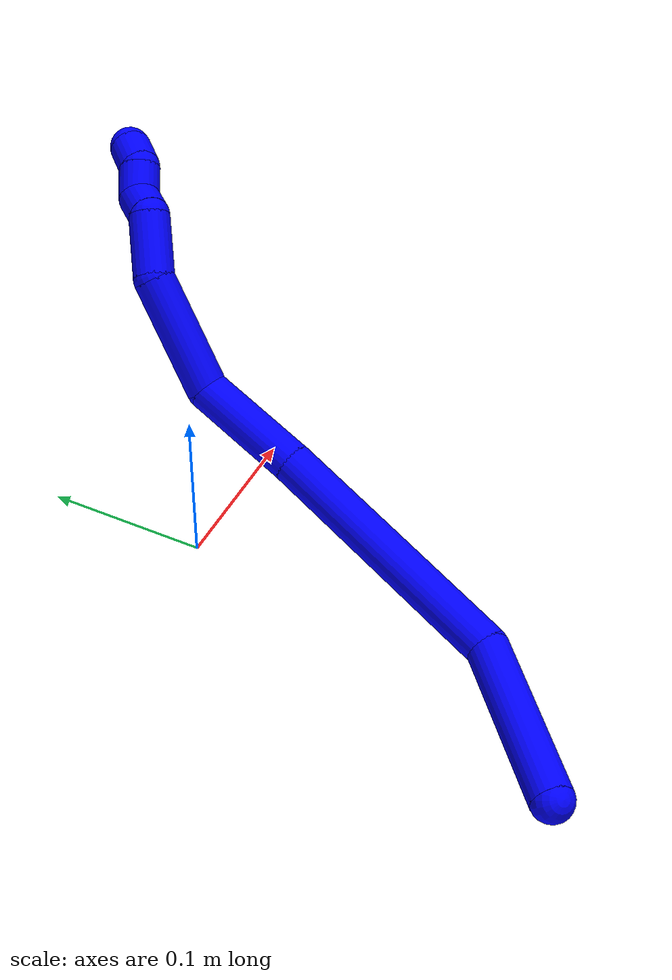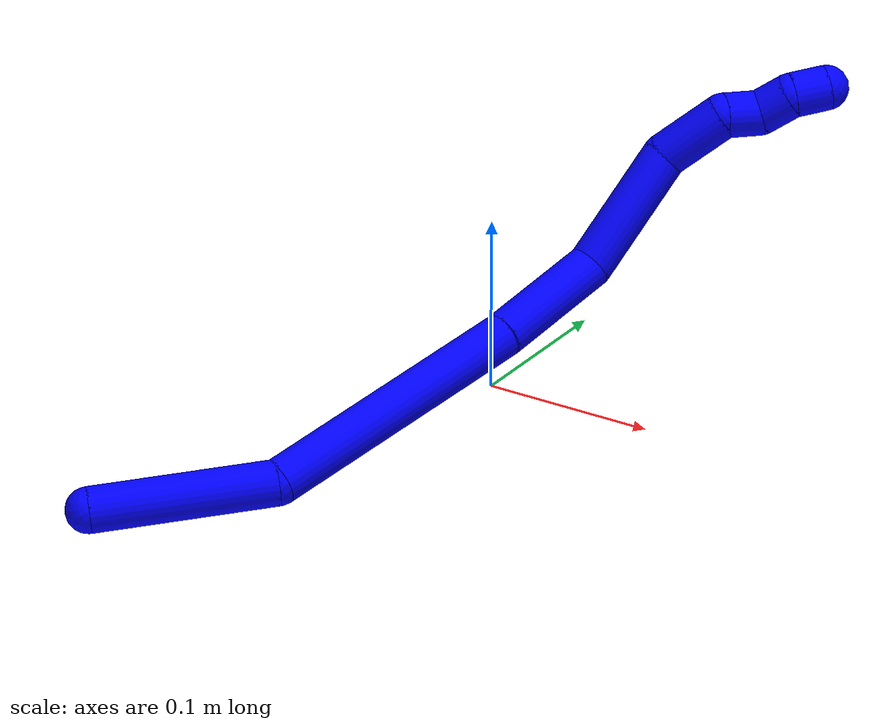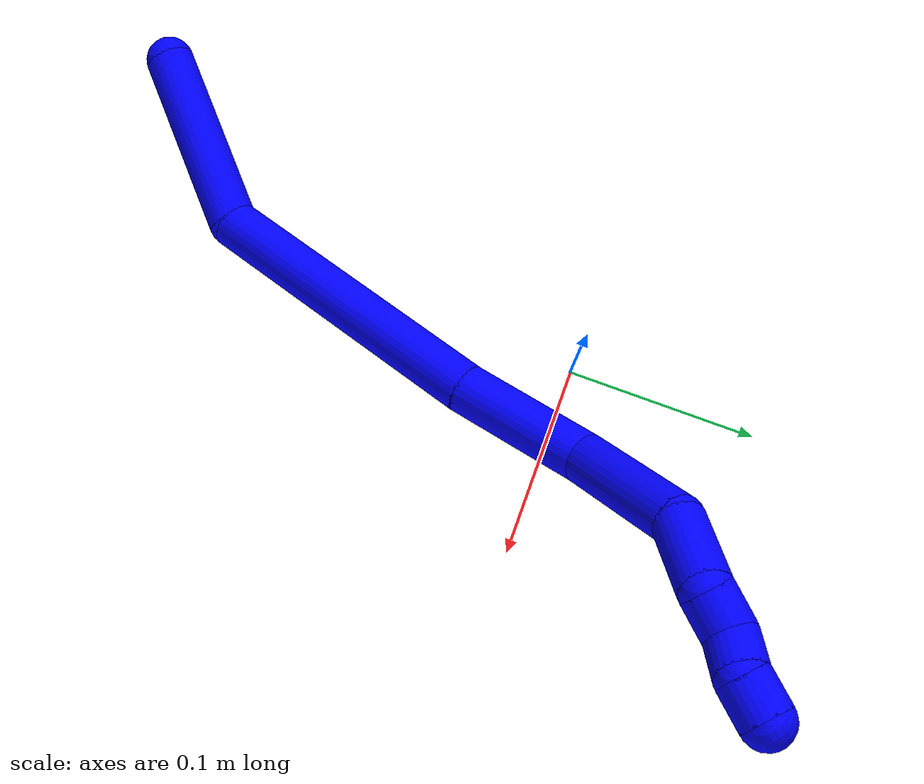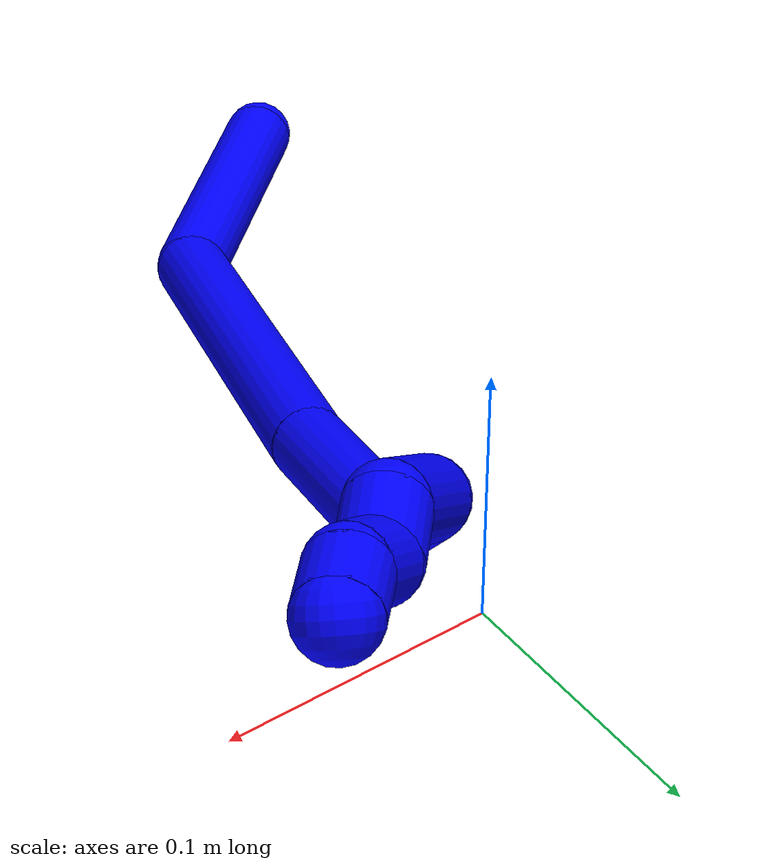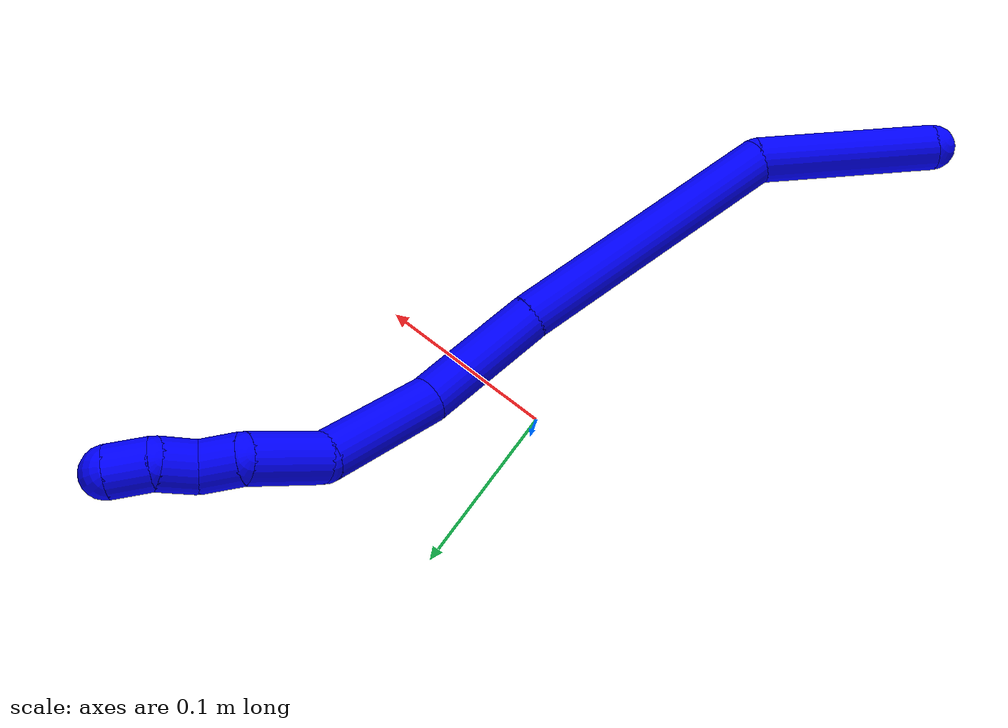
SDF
<sdf version="1.7">
 <world name="default">
  <plugin name="TubeGeneratorPlugin" filename="libtube_generator_plugin.so"/>
  <model name="photoneo_s_sensor">
   <static>1</static>
   <pose>0 0 2 1.57079 1.57079 3.14159</pose>
   <link name="link">
    <inertial><mass>0.1</mass></inertial>
    <sensor name="sensor" type="depth">
     <update_rate>30</update_rate>
     <camera>
      <horizontal_fov>1.22</horizontal_fov>
      <image><width>1920</width><height>1200</height><format>B8G8R8</format></image>
      <clip><near>0.1</near><far>4</far></clip>
      <depth_camera><output>points</output></depth_camera>
     </camera>
     <plugin name="camera_plugin" filename="libgazebo_ros_depth_camera.so">
      <baseline>0.2</baseline>
      <alwaysOn>1</alwaysOn>
      <updateRate>0.0</updateRate>
      <cameraName>camera_ir</cameraName>
      <imageTopicName>/camera/color/image_raw</imageTopicName>
      <cameraInfoTopicName>/camera/color/camera_info</cameraInfoTopicName>
      <depthImageTopicName>/camera/depth/image_raw</depthImageTopicName>
      <depthImageCameraInfoTopicName>/camera/depth/camera_info</depthImageCameraInfoTopicName>
      <pointCloudTopicName>/camera/depth/points</pointCloudTopicName>
      <frameName>fr_optical</frameName>
      <pointCloudCutoff>0.1</pointCloudCutoff>
      <pointCloudCutoffMax>2.0</pointCloudCutoffMax>
      <distortionK1>0</distortionK1>
      <distortionK2>0</distortionK2>
      <distortionK3>0</distortionK3>
      <distortionT1>0</distortionT1>
      <distortionT2>0</distortionT2>
      <CxPrime>0</CxPrime>
      <Cx>0</Cx>
      <Cy>0</Cy>
      <focalLength>0</focalLength>
      <hackBaseline>0</hackBaseline>
     </plugin>
    </sensor>
   </link>
  </model>
  <gravity>0 0 -9.8</gravity>
  <magnetic_field>6e-06 2.3e-05 -4.2e-05</magnetic_field>
  <atmosphere type="adiabatic"/>
  <physics name="default_physics" default="0" type="ode">
   <max_step_size>0.003</max_step_size>
   <real_time_factor>1</real_time_factor>
   <real_time_update_rate>1000</real_time_update_rate>
   <max_contacts>10000</max_contacts>
   <ode>
    <solver>
     <type>quick</type>
     <iters>100</iters>
     <sor>1.3</sor>
     <use_dynamic_moi_rescaling>0</use_dynamic_moi_rescaling>
    </solver>
    <constraints>
     <contact_max_correcting_vel>0</contact_max_correcting_vel>
     <contact_surface_layer>0.001</contact_surface_layer>
     <cfm>0</cfm>
     <erp>0.2</erp>
    </constraints>
   </ode>
  </physics>
  <scene><ambient>0.4 0.4 0.4 1</ambient><background>0.7 0.7 0.7 1</background><shadows>0</shadows></scene>
  <audio><device>default</device></audio>
  <spherical_coordinates>
   <surface_model>EARTH_WGS84</surface_model>
   <latitude_deg>0</latitude_deg>
   <longitude_deg>0</longitude_deg>
   <elevation>0</elevation>
   <heading_deg>0</heading_deg>
  </spherical_coordinates>
  <model name="bin">
   <static>1</static>
   <link name="bottom">
    <collision name="collision-bottom">
     <pose>0 0 -0.01 0 -0 0</pose>
     <geometry><box><size>0.8 0.6 0.02</size></box></geometry>
     <surface>
      <friction><ode><mu>100</mu><mu2>100</mu2></ode></friction>
      <contact><collide_bitmask>65535</collide_bitmask></contact>
     </surface>
    </collision>
   </link>
   <link name="west_wall">
    <collision name="collision-west_wall">
     <pose>-0.41 0 0.1 0 -0 0</pose>
     <geometry><box><size>0.02 0.6 0.2</size></box></geometry>
     <surface>
      <friction><ode><mu>100</mu><mu2>100</mu2></ode></friction>
      <contact><collide_bitmask>65535</collide_bitmask></contact>
     </surface>
    </collision>
   </link>
   <link name="east_wall">
    <collision name="collision-east_wall">
     <pose>0.41 0 0.1 0 -0 0</pose>
     <geometry><box><size>0.02 0.6 0.2</size></box></geometry>
     <surface>
      <friction><ode><mu>100</mu><mu2>100</mu2></ode></friction>
      <contact><collide_bitmask>65535</collide_bitmask></contact>
     </surface>
    </collision>
   </link>
   <link name="south_wall">
    <collision name="collision-south_wall">
     <pose>0 -0.31 0.1 0 -0 0</pose>
     <geometry><box><size>0.8 0.02 0.2</size></box></geometry>
     <surface>
      <friction><ode><mu>100</mu><mu2>100</mu2></ode></friction>
      <contact><collide_bitmask>65535</collide_bitmask></contact>
     </surface>
    </collision>
   </link>
   <link name="north_wall">
    <collision name="collision-north_wall">
     <pose>0 0.31 0.1 0 -0 0</pose>
     <geometry><box><size>0.8 0.02 0.2</size></box></geometry>
     <surface>
      <friction><ode><mu>100</mu><mu2>100</mu2></ode></friction>
      <contact><collide_bitmask>65535</collide_bitmask></contact>
     </surface>
    </collision>
   </link>
  </model>
  <model name="1">
   <static>0</static>
   <link name="1">
    <collision name="collision-cylinder-e_1_1_4">
     <pose>0.032975 0.025709 -0.027383 -2.38772 0.720479 -1.52113</pose>
     <geometry><cylinder><radius>0.0125</radius><length>0.099962</length></cylinder></geometry>
     <surface>
      <friction><ode><mu>1.16</mu><mu2>1.16</mu2><slip1>0</slip1><slip2>0</slip2></ode></friction>
      <contact><ode><kp>1e+06</kp><kd>1</kd><max_vel>0</max_vel><min_depth>0.001</min_depth></ode></contact>
     </surface>
    </collision>
    <visual name="visual-cylinder-e_1_1_4">
     <pose>0.032975 0.025709 -0.027383 -2.38772 0.720479 -1.52113</pose>
     <geometry><cylinder><radius>0.0125</radius><length>0.099962</length></cylinder></geometry>
     <material><ambient>0 0 1 1</ambient></material>
    </visual>
    <collision name="collision-cylinder-e_2_4_5">
     <pose>0.087118 0.119342 -0.088432 -2.03095 0.2723 -0.434632</pose>
     <geometry><cylinder><radius>0.0125</radius><length>0.157419</length></cylinder></geometry>
     <surface>
      <friction><ode><mu>1.16</mu><mu2>1.16</mu2><slip1>0</slip1><slip2>0</slip2></ode></friction>
      <contact><ode><kp>1e+06</kp><kd>1</kd><max_vel>0</max_vel><min_depth>0.001</min_depth></ode></contact>
     </surface>
    </collision>
    <visual name="visual-cylinder-e_2_4_5">
     <pose>0.087118 0.119342 -0.088432 -2.03095 0.2723 -0.434632</pose>
     <geometry><cylinder><radius>0.0125</radius><length>0.157419</length></cylinder></geometry>
     <material><ambient>0 0 1 1</ambient></material>
    </visual>
    <collision name="collision-cylinder-e_3_5_6">
     <pose>0.115454 0.2186 -0.135276 -1.96891 0.207802 -0.311416</pose>
     <geometry><cylinder><radius>0.0125</radius><length>0.069479</length></cylinder></geometry>
     <surface>
      <friction><ode><mu>1.16</mu><mu2>1.16</mu2><slip1>0</slip1><slip2>0</slip2></ode></friction>
      <contact><ode><kp>1e+06</kp><kd>1</kd><max_vel>0</max_vel><min_depth>0.001</min_depth></ode></contact>
     </surface>
    </collision>
    <visual name="visual-cylinder-e_3_5_6">
     <pose>0.115454 0.2186 -0.135276 -1.96891 0.207802 -0.311416</pose>
     <geometry><cylinder><radius>0.0125</radius><length>0.069479</length></cylinder></geometry>
     <material><ambient>0 0 1 1</ambient></material>
    </visual>
    <collision name="collision-cylinder-e_4_6_7">
     <pose>0.13804 0.282578 -0.143779 -1.42856 0.437366 -0.380694</pose>
     <geometry><cylinder><radius>0.0125</radius><length>0.072808</length></cylinder></geometry>
     <surface>
      <friction><ode><mu>1.16</mu><mu2>1.16</mu2><slip1>0</slip1><slip2>0</slip2></ode></friction>
      <contact><ode><kp>1e+06</kp><kd>1</kd><max_vel>0</max_vel><min_depth>0.001</min_depth></ode></contact>
     </surface>
    </collision>
    <visual name="visual-cylinder-e_4_6_7">
     <pose>0.13804 0.282578 -0.143779 -1.42856 0.437366 -0.380694</pose>
     <geometry><cylinder><radius>0.0125</radius><length>0.072808</length></cylinder></geometry>
     <material><ambient>0 0 1 1</ambient></material>
    </visual>
    <collision name="collision-cylinder-e_5_7_8">
     <pose>0.168666 0.327671 -0.139095 -1.57 0.884794 -0.884174</pose>
     <geometry><cylinder><radius>0.0125</radius><length>0.039304</length></cylinder></geometry>
     <surface>
      <friction><ode><mu>1.16</mu><mu2>1.16</mu2><slip1>0</slip1><slip2>0</slip2></ode></friction>
      <contact><ode><kp>1e+06</kp><kd>1</kd><max_vel>0</max_vel><min_depth>0.001</min_depth></ode></contact>
     </surface>
    </collision>
    <visual name="visual-cylinder-e_5_7_8">
     <pose>0.168666 0.327671 -0.139095 -1.57 0.884794 -0.884174</pose>
     <geometry><cylinder><radius>0.0125</radius><length>0.039304</length></cylinder></geometry>
     <material><ambient>0 0 1 1</ambient></material>
    </visual>
    <collision name="collision-cylinder-e_6_8_9">
     <pose>0.189655 0.345565 -0.145915 -2.46859 0.584766 -1.42112</pose>
     <geometry><cylinder><radius>0.0125</radius><length>0.020951</length></cylinder></geometry>
     <surface>
      <friction><ode><mu>1.16</mu><mu2>1.16</mu2><slip1>0</slip1><slip2>0</slip2></ode></friction>
      <contact><ode><kp>1e+06</kp><kd>1</kd><max_vel>0</max_vel><min_depth>0.001</min_depth></ode></contact>
     </surface>
    </collision>
    <visual name="visual-cylinder-e_6_8_9">
     <pose>0.189655 0.345565 -0.145915 -2.46859 0.584766 -1.42112</pose>
     <geometry><cylinder><radius>0.0125</radius><length>0.020951</length></cylinder></geometry>
     <material><ambient>0 0 1 1</ambient></material>
    </visual>
    <collision name="collision-cylinder-e_7_9_10">
     <pose>0.203788 0.356555 -0.153118 -1.63796 0.98354 -1.04052</pose>
     <geometry><cylinder><radius>0.0125</radius><length>0.020062</length></cylinder></geometry>
     <surface>
      <friction><ode><mu>1.16</mu><mu2>1.16</mu2><slip1>0</slip1><slip2>0</slip2></ode></friction>
      <contact><ode><kp>1e+06</kp><kd>1</kd><max_vel>0</max_vel><min_depth>0.001</min_depth></ode></contact>
     </surface>
    </collision>
    <visual name="visual-cylinder-e_7_9_10">
     <pose>0.203788 0.356555 -0.153118 -1.63796 0.98354 -1.04052</pose>
     <geometry><cylinder><radius>0.0125</radius><length>0.020062</length></cylinder></geometry>
     <material><ambient>0 0 1 1</ambient></material>
    </visual>
    <collision name="collision-cylinder-e_8_10_2">
     <pose>0.218227 0.368068 -0.158731 -2.29138 0.654094 -1.28614</pose>
     <geometry><cylinder><radius>0.0125</radius><length>0.020014</length></cylinder></geometry>
     <surface>
      <friction><ode><mu>1.16</mu><mu2>1.16</mu2><slip1>0</slip1><slip2>0</slip2></ode></friction>
      <contact><ode><kp>1e+06</kp><kd>1</kd><max_vel>0</max_vel><min_depth>0.001</min_depth></ode></contact>
     </surface>
    </collision>
    <visual name="visual-cylinder-e_8_10_2">
     <pose>0.218227 0.368068 -0.158731 -2.29138 0.654094 -1.28614</pose>
     <geometry><cylinder><radius>0.0125</radius><length>0.020014</length></cylinder></geometry>
     <material><ambient>0 0 1 1</ambient></material>
    </visual>
    <collision name="collision-sphere-2">
     <pose>0.224316 0.374035 -0.163971 0 -0 0</pose>
     <geometry><sphere><radius>0.0125</radius></sphere></geometry>
     <surface>
      <friction><ode><mu>1.16</mu><mu2>1.16</mu2><slip1>0</slip1><slip2>0</slip2></ode></friction>
      <contact><ode><kp>1e+06</kp><kd>1</kd><max_vel>0</max_vel><min_depth>0.001</min_depth></ode></contact>
     </surface>
    </collision>
    <visual name="visual-sphere-2">
     <pose>0.224316 0.374035 -0.163971 0 -0 0</pose>
     <geometry><sphere><radius>0.0125</radius></sphere></geometry>
     <material><ambient>0 0 1 1</ambient></material>
    </visual>
    <collision name="collision-sphere-10">
     <pose>0.212138 0.3621 -0.153491 0 -0 0</pose>
     <geometry><sphere><radius>0.0125</radius></sphere></geometry>
     <surface>
      <friction><ode><mu>1.16</mu><mu2>1.16</mu2><slip1>0</slip1><slip2>0</slip2></ode></friction>
      <contact><ode><kp>1e+06</kp><kd>1</kd><max_vel>0</max_vel><min_depth>0.001</min_depth></ode></contact>
     </surface>
    </collision>
    <visual name="visual-sphere-10">
     <pose>0.212138 0.3621 -0.153491 0 -0 0</pose>
     <geometry><sphere><radius>0.0125</radius></sphere></geometry>
     <material><ambient>0 0 1 1</ambient></material>
    </visual>
    <collision name="collision-sphere-9">
     <pose>0.195438 0.351009 -0.152745 0 -0 0</pose>
     <geometry><sphere><radius>0.0125</radius></sphere></geometry>
     <surface>
      <friction><ode><mu>1.16</mu><mu2>1.16</mu2><slip1>0</slip1><slip2>0</slip2></ode></friction>
      <contact><ode><kp>1e+06</kp><kd>1</kd><max_vel>0</max_vel><min_depth>0.001</min_depth></ode></contact>
     </surface>
    </collision>
    <visual name="visual-sphere-9">
     <pose>0.195438 0.351009 -0.152745 0 -0 0</pose>
     <geometry><sphere><radius>0.0125</radius></sphere></geometry>
     <material><ambient>0 0 1 1</ambient></material>
    </visual>
    <collision name="collision-sphere-4">
     <pose>0.06595 0.051418 -0.054766 0 -0 0</pose>
     <geometry><sphere><radius>0.0125</radius></sphere></geometry>
     <surface>
      <friction><ode><mu>1.16</mu><mu2>1.16</mu2><slip1>0</slip1><slip2>0</slip2></ode></friction>
      <contact><ode><kp>1e+06</kp><kd>1</kd><max_vel>0</max_vel><min_depth>0.001</min_depth></ode></contact>
     </surface>
    </collision>
    <visual name="visual-sphere-4">
     <pose>0.06595 0.051418 -0.054766 0 -0 0</pose>
     <geometry><sphere><radius>0.0125</radius></sphere></geometry>
     <material><ambient>0 0 1 1</ambient></material>
    </visual>
    <collision name="collision-sphere-1">
     <geometry><sphere><radius>0.0125</radius></sphere></geometry>
     <surface>
      <friction><ode><mu>1.16</mu><mu2>1.16</mu2><slip1>0</slip1><slip2>0</slip2></ode></friction>
      <contact><ode><kp>1e+06</kp><kd>1</kd><max_vel>0</max_vel><min_depth>0.001</min_depth></ode></contact>
     </surface>
    </collision>
    <visual name="visual-sphere-1">
     <geometry><sphere><radius>0.0125</radius></sphere></geometry>
     <material><ambient>0 0 1 1</ambient></material>
    </visual>
    <collision name="collision-sphere-8">
     <pose>0.183872 0.34012 -0.139085 0 -0 0</pose>
     <geometry><sphere><radius>0.0125</radius></sphere></geometry>
     <surface>
      <friction><ode><mu>1.16</mu><mu2>1.16</mu2><slip1>0</slip1><slip2>0</slip2></ode></friction>
      <contact><ode><kp>1e+06</kp><kd>1</kd><max_vel>0</max_vel><min_depth>0.001</min_depth></ode></contact>
     </surface>
    </collision>
    <visual name="visual-sphere-8">
     <pose>0.183872 0.34012 -0.139085 0 -0 0</pose>
     <geometry><sphere><radius>0.0125</radius></sphere></geometry>
     <material><ambient>0 0 1 1</ambient></material>
    </visual>
    <collision name="collision-sphere-5">
     <pose>0.108287 0.187266 -0.122098 0 -0 0</pose>
     <geometry><sphere><radius>0.0125</radius></sphere></geometry>
     <surface>
      <friction><ode><mu>1.16</mu><mu2>1.16</mu2><slip1>0</slip1><slip2>0</slip2></ode></friction>
      <contact><ode><kp>1e+06</kp><kd>1</kd><max_vel>0</max_vel><min_depth>0.001</min_depth></ode></contact>
     </surface>
    </collision>
    <visual name="visual-sphere-5">
     <pose>0.108287 0.187266 -0.122098 0 -0 0</pose>
     <geometry><sphere><radius>0.0125</radius></sphere></geometry>
     <material><ambient>0 0 1 1</ambient></material>
    </visual>
    <collision name="collision-sphere-6">
     <pose>0.122621 0.249934 -0.148454 0 -0 0</pose>
     <geometry><sphere><radius>0.0125</radius></sphere></geometry>
     <surface>
      <friction><ode><mu>1.16</mu><mu2>1.16</mu2><slip1>0</slip1><slip2>0</slip2></ode></friction>
      <contact><ode><kp>1e+06</kp><kd>1</kd><max_vel>0</max_vel><min_depth>0.001</min_depth></ode></contact>
     </surface>
    </collision>
    <visual name="visual-sphere-6">
     <pose>0.122621 0.249934 -0.148454 0 -0 0</pose>
     <geometry><sphere><radius>0.0125</radius></sphere></geometry>
     <material><ambient>0 0 1 1</ambient></material>
    </visual>
    <collision name="collision-sphere-7">
     <pose>0.15346 0.315223 -0.139105 0 -0 0</pose>
     <geometry><sphere><radius>0.0125</radius></sphere></geometry>
     <surface>
      <friction><ode><mu>1.16</mu><mu2>1.16</mu2><slip1>0</slip1><slip2>0</slip2></ode></friction>
      <contact><ode><kp>1e+06</kp><kd>1</kd><max_vel>0</max_vel><min_depth>0.001</min_depth></ode></contact>
     </surface>
    </collision>
    <visual name="visual-sphere-7">
     <pose>0.15346 0.315223 -0.139105 0 -0 0</pose>
     <geometry><sphere><radius>0.0125</radius></sphere></geometry>
     <material><ambient>0 0 1 1</ambient></material>
    </visual>
    <inertial>
     <pose>0.108282 0.183514 -0.102596 0 -0 0</pose>
     <mass>0.5</mass>
     <inertia>
      <ixx>0.000145</ixx>
      <ixy>0</ixy>
      <ixz>0</ixz>
      <iyy>-0.000255</iyy>
      <iyz>0</iyz>
      <izz>-0.000585</izz>
     </inertia>
    </inertial>
   </link>
   <pose>-0.085321 -0.257526 0.012228 0.642656 -0.314148 -0.1074</pose>
  </model>
 </world>
</sdf>
